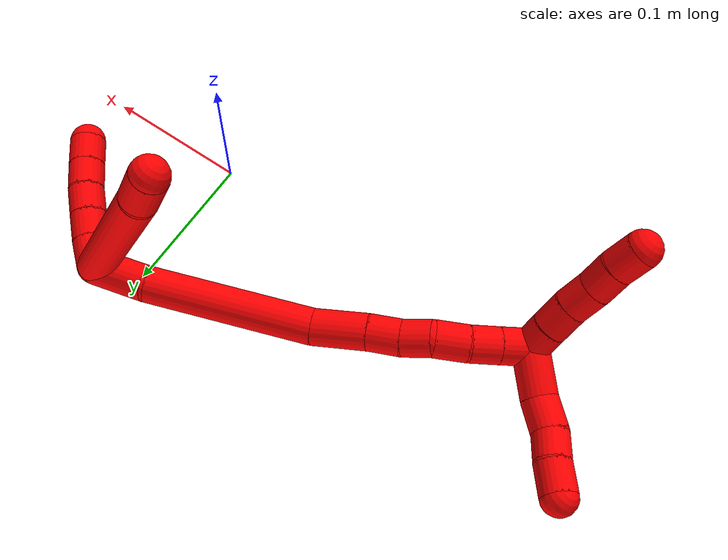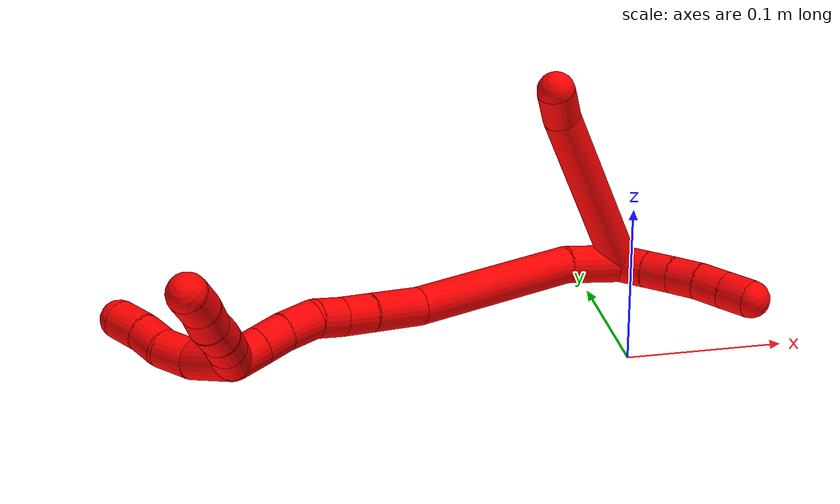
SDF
<sdf version="1.7">
 <world name="default">
  <model name="2">
   <static>0</static>
   <link name="2">
    <collision name="collision-cylinder-e_1_2_8">
     <pose>-0.009837 0.02602 0.056606 -0.430858 -0.156611 0.034337</pose>
     <geometry><cylinder><radius>0.0125</radius><length>0.126144</length></cylinder></geometry>
     <surface>
      <friction><ode><mu>1.16</mu><mu2>1.16</mu2><slip1>0</slip1><slip2>0</slip2></ode></friction>
      <contact><ode><kp>1e+06</kp><kd>1</kd><max_vel>0</max_vel><min_depth>0.001</min_depth></ode></contact>
     </surface>
    </collision>
    <visual name="visual-cylinder-e_1_2_8">
     <pose>-0.009837 0.02602 0.056606 -0.430858 -0.156611 0.034337</pose>
     <geometry><cylinder><radius>0.0125</radius><length>0.126144</length></cylinder></geometry>
     <material><ambient>1 0 0 1</ambient></material>
    </visual>
    <collision name="collision-cylinder-e_2_8_6">
     <pose>-0.019848 0.055347 0.124672 -0.281022 -0.014543 0.002057</pose>
     <geometry><cylinder><radius>0.0125</radius><length>0.023856</length></cylinder></geometry>
     <surface>
      <friction><ode><mu>1.16</mu><mu2>1.16</mu2><slip1>0</slip1><slip2>0</slip2></ode></friction>
      <contact><ode><kp>1e+06</kp><kd>1</kd><max_vel>0</max_vel><min_depth>0.001</min_depth></ode></contact>
     </surface>
    </collision>
    <visual name="visual-cylinder-e_2_8_6">
     <pose>-0.019848 0.055347 0.124672 -0.281022 -0.014543 0.002057</pose>
     <geometry><cylinder><radius>0.0125</radius><length>0.023856</length></cylinder></geometry>
     <material><ambient>1 0 0 1</ambient></material>
    </visual>
    <collision name="collision-cylinder-e_1_2_9">
     <pose>0.008411 -0.005132 0.001706 1.24997 0.999369 0.750371</pose>
     <geometry><cylinder><radius>0.0125</radius><length>0.02</length></cylinder></geometry>
     <surface>
      <friction><ode><mu>1.16</mu><mu2>1.16</mu2><slip1>0</slip1><slip2>0</slip2></ode></friction>
      <contact><ode><kp>1e+06</kp><kd>1</kd><max_vel>0</max_vel><min_depth>0.001</min_depth></ode></contact>
     </surface>
    </collision>
    <visual name="visual-cylinder-e_1_2_9">
     <pose>0.008411 -0.005132 0.001706 1.24997 0.999369 0.750371</pose>
     <geometry><cylinder><radius>0.0125</radius><length>0.02</length></cylinder></geometry>
     <material><ambient>1 0 0 1</ambient></material>
    </visual>
    <collision name="collision-cylinder-e_2_9_10">
     <pose>0.024857 -0.015643 0.005965 1.12737 0.933055 0.61637</pose>
     <geometry><cylinder><radius>0.0125</radius><length>0.02</length></cylinder></geometry>
     <surface>
      <friction><ode><mu>1.16</mu><mu2>1.16</mu2><slip1>0</slip1><slip2>0</slip2></ode></friction>
      <contact><ode><kp>1e+06</kp><kd>1</kd><max_vel>0</max_vel><min_depth>0.001</min_depth></ode></contact>
     </surface>
    </collision>
    <visual name="visual-cylinder-e_2_9_10">
     <pose>0.024857 -0.015643 0.005965 1.12737 0.933055 0.61637</pose>
     <geometry><cylinder><radius>0.0125</radius><length>0.02</length></cylinder></geometry>
     <material><ambient>1 0 0 1</ambient></material>
    </visual>
    <collision name="collision-cylinder-e_3_10_11">
     <pose>0.040855 -0.026544 0.010983 1.15133 0.921288 0.623147</pose>
     <geometry><cylinder><radius>0.0125</radius><length>0.02</length></cylinder></geometry>
     <surface>
      <friction><ode><mu>1.16</mu><mu2>1.16</mu2><slip1>0</slip1><slip2>0</slip2></ode></friction>
      <contact><ode><kp>1e+06</kp><kd>1</kd><max_vel>0</max_vel><min_depth>0.001</min_depth></ode></contact>
     </surface>
    </collision>
    <visual name="visual-cylinder-e_3_10_11">
     <pose>0.040855 -0.026544 0.010983 1.15133 0.921288 0.623147</pose>
     <geometry><cylinder><radius>0.0125</radius><length>0.02</length></cylinder></geometry>
     <material><ambient>1 0 0 1</ambient></material>
    </visual>
    <collision name="collision-cylinder-e_4_11_12">
     <pose>0.056141 -0.03841 0.015931 1.19734 0.821486 0.577593</pose>
     <geometry><cylinder><radius>0.0125</radius><length>0.02</length></cylinder></geometry>
     <surface>
      <friction><ode><mu>1.16</mu><mu2>1.16</mu2><slip1>0</slip1><slip2>0</slip2></ode></friction>
      <contact><ode><kp>1e+06</kp><kd>1</kd><max_vel>0</max_vel><min_depth>0.001</min_depth></ode></contact>
     </surface>
    </collision>
    <visual name="visual-cylinder-e_4_11_12">
     <pose>0.056141 -0.03841 0.015931 1.19734 0.821486 0.577593</pose>
     <geometry><cylinder><radius>0.0125</radius><length>0.02</length></cylinder></geometry>
     <material><ambient>1 0 0 1</ambient></material>
    </visual>
    <collision name="collision-cylinder-e_5_12_5">
     <pose>0.070667 -0.051093 0.021223 1.15408 0.804473 0.540324</pose>
     <geometry><cylinder><radius>0.0125</radius><length>0.02</length></cylinder></geometry>
     <surface>
      <friction><ode><mu>1.16</mu><mu2>1.16</mu2><slip1>0</slip1><slip2>0</slip2></ode></friction>
      <contact><ode><kp>1e+06</kp><kd>1</kd><max_vel>0</max_vel><min_depth>0.001</min_depth></ode></contact>
     </surface>
    </collision>
    <visual name="visual-cylinder-e_5_12_5">
     <pose>0.070667 -0.051093 0.021223 1.15408 0.804473 0.540324</pose>
     <geometry><cylinder><radius>0.0125</radius><length>0.02</length></cylinder></geometry>
     <material><ambient>1 0 0 1</ambient></material>
    </visual>
    <collision name="collision-cylinder-e_1_2_13">
     <pose>-0.01817 -0.00167 0.010114 0.163604 -1.05717 -0.095689</pose>
     <geometry><cylinder><radius>0.0125</radius><length>0.041724</length></cylinder></geometry>
     <surface>
      <friction><ode><mu>1.16</mu><mu2>1.16</mu2><slip1>0</slip1><slip2>0</slip2></ode></friction>
      <contact><ode><kp>1e+06</kp><kd>1</kd><max_vel>0</max_vel><min_depth>0.001</min_depth></ode></contact>
     </surface>
    </collision>
    <visual name="visual-cylinder-e_1_2_13">
     <pose>-0.01817 -0.00167 0.010114 0.163604 -1.05717 -0.095689</pose>
     <geometry><cylinder><radius>0.0125</radius><length>0.041724</length></cylinder></geometry>
     <material><ambient>1 0 0 1</ambient></material>
    </visual>
    <collision name="collision-cylinder-e_2_13_14">
     <pose>-0.085301 -0.020482 0.044188 0.621013 -1.02909 -0.358917</pose>
     <geometry><cylinder><radius>0.0125</radius><length>0.114282</length></cylinder></geometry>
     <surface>
      <friction><ode><mu>1.16</mu><mu2>1.16</mu2><slip1>0</slip1><slip2>0</slip2></ode></friction>
      <contact><ode><kp>1e+06</kp><kd>1</kd><max_vel>0</max_vel><min_depth>0.001</min_depth></ode></contact>
     </surface>
    </collision>
    <visual name="visual-cylinder-e_2_13_14">
     <pose>-0.085301 -0.020482 0.044188 0.621013 -1.02909 -0.358917</pose>
     <geometry><cylinder><radius>0.0125</radius><length>0.114282</length></cylinder></geometry>
     <material><ambient>1 0 0 1</ambient></material>
    </visual>
    <collision name="collision-cylinder-e_3_14_15">
     <pose>-0.148565 -0.042466 0.079372 0.407267 -0.863716 -0.189765</pose>
     <geometry><cylinder><radius>0.0125</radius><length>0.037631</length></cylinder></geometry>
     <surface>
      <friction><ode><mu>1.16</mu><mu2>1.16</mu2><slip1>0</slip1><slip2>0</slip2></ode></friction>
      <contact><ode><kp>1e+06</kp><kd>1</kd><max_vel>0</max_vel><min_depth>0.001</min_depth></ode></contact>
     </surface>
    </collision>
    <visual name="visual-cylinder-e_3_14_15">
     <pose>-0.148565 -0.042466 0.079372 0.407267 -0.863716 -0.189765</pose>
     <geometry><cylinder><radius>0.0125</radius><length>0.037631</length></cylinder></geometry>
     <material><ambient>1 0 0 1</ambient></material>
    </visual>
    <collision name="collision-cylinder-e_4_15_16">
     <pose>-0.171825 -0.049826 0.096632 0.395266 -0.939914 -0.202718</pose>
     <geometry><cylinder><radius>0.0125</radius><length>0.022181</length></cylinder></geometry>
     <surface>
      <friction><ode><mu>1.16</mu><mu2>1.16</mu2><slip1>0</slip1><slip2>0</slip2></ode></friction>
      <contact><ode><kp>1e+06</kp><kd>1</kd><max_vel>0</max_vel><min_depth>0.001</min_depth></ode></contact>
     </surface>
    </collision>
    <visual name="visual-cylinder-e_4_15_16">
     <pose>-0.171825 -0.049826 0.096632 0.395266 -0.939914 -0.202718</pose>
     <geometry><cylinder><radius>0.0125</radius><length>0.022181</length></cylinder></geometry>
     <material><ambient>1 0 0 1</ambient></material>
    </visual>
    <collision name="collision-cylinder-e_5_16_17">
     <pose>-0.187913 -0.054777 0.109536 0.340397 -0.774845 -0.140025</pose>
     <geometry><cylinder><radius>0.0125</radius><length>0.020389</length></cylinder></geometry>
     <surface>
      <friction><ode><mu>1.16</mu><mu2>1.16</mu2><slip1>0</slip1><slip2>0</slip2></ode></friction>
      <contact><ode><kp>1e+06</kp><kd>1</kd><max_vel>0</max_vel><min_depth>0.001</min_depth></ode></contact>
     </surface>
    </collision>
    <visual name="visual-cylinder-e_5_16_17">
     <pose>-0.187913 -0.054777 0.109536 0.340397 -0.774845 -0.140025</pose>
     <geometry><cylinder><radius>0.0125</radius><length>0.020389</length></cylinder></geometry>
     <material><ambient>1 0 0 1</ambient></material>
    </visual>
    <collision name="collision-cylinder-e_6_17_18">
     <pose>-0.204163 -0.062238 0.121283 0.800319 -0.91546 -0.410863</pose>
     <geometry><cylinder><radius>0.0125</radius><length>0.023001</length></cylinder></geometry>
     <surface>
      <friction><ode><mu>1.16</mu><mu2>1.16</mu2><slip1>0</slip1><slip2>0</slip2></ode></friction>
      <contact><ode><kp>1e+06</kp><kd>1</kd><max_vel>0</max_vel><min_depth>0.001</min_depth></ode></contact>
     </surface>
    </collision>
    <visual name="visual-cylinder-e_6_17_18">
     <pose>-0.204163 -0.062238 0.121283 0.800319 -0.91546 -0.410863</pose>
     <geometry><cylinder><radius>0.0125</radius><length>0.023001</length></cylinder></geometry>
     <material><ambient>1 0 0 1</ambient></material>
    </visual>
    <collision name="collision-cylinder-e_7_18_19">
     <pose>-0.220617 -0.072718 0.130439 0.905736 -0.814041 -0.413542</pose>
     <geometry><cylinder><radius>0.0125</radius><length>0.02018</length></cylinder></geometry>
     <surface>
      <friction><ode><mu>1.16</mu><mu2>1.16</mu2><slip1>0</slip1><slip2>0</slip2></ode></friction>
      <contact><ode><kp>1e+06</kp><kd>1</kd><max_vel>0</max_vel><min_depth>0.001</min_depth></ode></contact>
     </surface>
    </collision>
    <visual name="visual-cylinder-e_7_18_19">
     <pose>-0.220617 -0.072718 0.130439 0.905736 -0.814041 -0.413542</pose>
     <geometry><cylinder><radius>0.0125</radius><length>0.02018</length></cylinder></geometry>
     <material><ambient>1 0 0 1</ambient></material>
    </visual>
    <collision name="collision-cylinder-e_8_19_1">
     <pose>-0.23539 -0.083685 0.139241 0.883582 -0.806058 -0.397982</pose>
     <geometry><cylinder><radius>0.0125</radius><length>0.020614</length></cylinder></geometry>
     <surface>
      <friction><ode><mu>1.16</mu><mu2>1.16</mu2><slip1>0</slip1><slip2>0</slip2></ode></friction>
      <contact><ode><kp>1e+06</kp><kd>1</kd><max_vel>0</max_vel><min_depth>0.001</min_depth></ode></contact>
     </surface>
    </collision>
    <visual name="visual-cylinder-e_8_19_1">
     <pose>-0.23539 -0.083685 0.139241 0.883582 -0.806058 -0.397982</pose>
     <geometry><cylinder><radius>0.0125</radius><length>0.020614</length></cylinder></geometry>
     <material><ambient>1 0 0 1</ambient></material>
    </visual>
    <collision name="collision-cylinder-e_1_1_20">
     <pose>-0.24224 -0.089874 0.153728 0.067425 0.058689 0.00198</pose>
     <geometry><cylinder><radius>0.0125</radius><length>0.02</length></cylinder></geometry>
     <surface>
      <friction><ode><mu>1.16</mu><mu2>1.16</mu2><slip1>0</slip1><slip2>0</slip2></ode></friction>
      <contact><ode><kp>1e+06</kp><kd>1</kd><max_vel>0</max_vel><min_depth>0.001</min_depth></ode></contact>
     </surface>
    </collision>
    <visual name="visual-cylinder-e_1_1_20">
     <pose>-0.24224 -0.089874 0.153728 0.067425 0.058689 0.00198</pose>
     <geometry><cylinder><radius>0.0125</radius><length>0.02</length></cylinder></geometry>
     <material><ambient>1 0 0 1</ambient></material>
    </visual>
    <collision name="collision-cylinder-e_2_20_21">
     <pose>-0.241279 -0.091655 0.17362 0.111102 0.037503 0.002086</pose>
     <geometry><cylinder><radius>0.0125</radius><length>0.02</length></cylinder></geometry>
     <surface>
      <friction><ode><mu>1.16</mu><mu2>1.16</mu2><slip1>0</slip1><slip2>0</slip2></ode></friction>
      <contact><ode><kp>1e+06</kp><kd>1</kd><max_vel>0</max_vel><min_depth>0.001</min_depth></ode></contact>
     </surface>
    </collision>
    <visual name="visual-cylinder-e_2_20_21">
     <pose>-0.241279 -0.091655 0.17362 0.111102 0.037503 0.002086</pose>
     <geometry><cylinder><radius>0.0125</radius><length>0.02</length></cylinder></geometry>
     <material><ambient>1 0 0 1</ambient></material>
    </visual>
    <collision name="collision-cylinder-e_3_21_22">
     <pose>-0.241691 -0.093568 0.193487 0.080887 -0.078824 -0.003191</pose>
     <geometry><cylinder><radius>0.0125</radius><length>0.02</length></cylinder></geometry>
     <surface>
      <friction><ode><mu>1.16</mu><mu2>1.16</mu2><slip1>0</slip1><slip2>0</slip2></ode></friction>
      <contact><ode><kp>1e+06</kp><kd>1</kd><max_vel>0</max_vel><min_depth>0.001</min_depth></ode></contact>
     </surface>
    </collision>
    <visual name="visual-cylinder-e_3_21_22">
     <pose>-0.241691 -0.093568 0.193487 0.080887 -0.078824 -0.003191</pose>
     <geometry><cylinder><radius>0.0125</radius><length>0.02</length></cylinder></geometry>
     <material><ambient>1 0 0 1</ambient></material>
    </visual>
    <collision name="collision-cylinder-e_4_22_23">
     <pose>-0.242235 -0.094121 0.213418 -0.025283 0.024401 -0.000308</pose>
     <geometry><cylinder><radius>0.0125</radius><length>0.02</length></cylinder></geometry>
     <surface>
      <friction><ode><mu>1.16</mu><mu2>1.16</mu2><slip1>0</slip1><slip2>0</slip2></ode></friction>
      <contact><ode><kp>1e+06</kp><kd>1</kd><max_vel>0</max_vel><min_depth>0.001</min_depth></ode></contact>
     </surface>
    </collision>
    <visual name="visual-cylinder-e_4_22_23">
     <pose>-0.242235 -0.094121 0.213418 -0.025283 0.024401 -0.000308</pose>
     <geometry><cylinder><radius>0.0125</radius><length>0.02</length></cylinder></geometry>
     <material><ambient>1 0 0 1</ambient></material>
    </visual>
    <collision name="collision-cylinder-e_5_23_4">
     <pose>-0.243051 -0.093788 0.233355 -0.008043 -0.106259 0.000428</pose>
     <geometry><cylinder><radius>0.0125</radius><length>0.02</length></cylinder></geometry>
     <surface>
      <friction><ode><mu>1.16</mu><mu2>1.16</mu2><slip1>0</slip1><slip2>0</slip2></ode></friction>
      <contact><ode><kp>1e+06</kp><kd>1</kd><max_vel>0</max_vel><min_depth>0.001</min_depth></ode></contact>
     </surface>
    </collision>
    <visual name="visual-cylinder-e_5_23_4">
     <pose>-0.243051 -0.093788 0.233355 -0.008043 -0.106259 0.000428</pose>
     <geometry><cylinder><radius>0.0125</radius><length>0.02</length></cylinder></geometry>
     <material><ambient>1 0 0 1</ambient></material>
    </visual>
    <collision name="collision-cylinder-e_1_1_24">
     <pose>-0.256531 -0.082328 0.136682 -2.37142 -0.946534 1.80249</pose>
     <geometry><cylinder><radius>0.0125</radius><length>0.03378</length></cylinder></geometry>
     <surface>
      <friction><ode><mu>1.16</mu><mu2>1.16</mu2><slip1>0</slip1><slip2>0</slip2></ode></friction>
      <contact><ode><kp>1e+06</kp><kd>1</kd><max_vel>0</max_vel><min_depth>0.001</min_depth></ode></contact>
     </surface>
    </collision>
    <visual name="visual-cylinder-e_1_1_24">
     <pose>-0.256531 -0.082328 0.136682 -2.37142 -0.946534 1.80249</pose>
     <geometry><cylinder><radius>0.0125</radius><length>0.03378</length></cylinder></geometry>
     <material><ambient>1 0 0 1</ambient></material>
    </visual>
    <collision name="collision-cylinder-e_2_24_25">
     <pose>-0.279669 -0.068594 0.127794 -1.82766 -0.92609 1.14897</pose>
     <geometry><cylinder><radius>0.0125</radius><length>0.023606</length></cylinder></geometry>
     <surface>
      <friction><ode><mu>1.16</mu><mu2>1.16</mu2><slip1>0</slip1><slip2>0</slip2></ode></friction>
      <contact><ode><kp>1e+06</kp><kd>1</kd><max_vel>0</max_vel><min_depth>0.001</min_depth></ode></contact>
     </surface>
    </collision>
    <visual name="visual-cylinder-e_2_24_25">
     <pose>-0.279669 -0.068594 0.127794 -1.82766 -0.92609 1.14897</pose>
     <geometry><cylinder><radius>0.0125</radius><length>0.023606</length></cylinder></geometry>
     <material><ambient>1 0 0 1</ambient></material>
    </visual>
    <collision name="collision-cylinder-e_3_25_26">
     <pose>-0.295225 -0.054033 0.123991 -1.82498 -0.655847 0.828823</pose>
     <geometry><cylinder><radius>0.0125</radius><length>0.020077</length></cylinder></geometry>
     <surface>
      <friction><ode><mu>1.16</mu><mu2>1.16</mu2><slip1>0</slip1><slip2>0</slip2></ode></friction>
      <contact><ode><kp>1e+06</kp><kd>1</kd><max_vel>0</max_vel><min_depth>0.001</min_depth></ode></contact>
     </surface>
    </collision>
    <visual name="visual-cylinder-e_3_25_26">
     <pose>-0.295225 -0.054033 0.123991 -1.82498 -0.655847 0.828823</pose>
     <geometry><cylinder><radius>0.0125</radius><length>0.020077</length></cylinder></geometry>
     <material><ambient>1 0 0 1</ambient></material>
    </visual>
    <collision name="collision-cylinder-e_4_26_3">
     <pose>-0.309349 -0.03871 0.11979 -1.85187 -0.789693 1.01192</pose>
     <geometry><cylinder><radius>0.0125</radius><length>0.022536</length></cylinder></geometry>
     <surface>
      <friction><ode><mu>1.16</mu><mu2>1.16</mu2><slip1>0</slip1><slip2>0</slip2></ode></friction>
      <contact><ode><kp>1e+06</kp><kd>1</kd><max_vel>0</max_vel><min_depth>0.001</min_depth></ode></contact>
     </surface>
    </collision>
    <visual name="visual-cylinder-e_4_26_3">
     <pose>-0.309349 -0.03871 0.11979 -1.85187 -0.789693 1.01192</pose>
     <geometry><cylinder><radius>0.0125</radius><length>0.022536</length></cylinder></geometry>
     <material><ambient>1 0 0 1</ambient></material>
    </visual>
    <collision name="collision-sphere-3">
     <pose>-0.317351 -0.031088 0.11759 0 -0 0</pose>
     <geometry><sphere><radius>0.0125</radius></sphere></geometry>
     <surface>
      <friction><ode><mu>1.16</mu><mu2>1.16</mu2><slip1>0</slip1><slip2>0</slip2></ode></friction>
      <contact><ode><kp>1e+06</kp><kd>1</kd><max_vel>0</max_vel><min_depth>0.001</min_depth></ode></contact>
     </surface>
    </collision>
    <visual name="visual-sphere-3">
     <pose>-0.317351 -0.031088 0.11759 0 -0 0</pose>
     <geometry><sphere><radius>0.0125</radius></sphere></geometry>
     <material><ambient>1 0 0 1</ambient></material>
    </visual>
    <collision name="collision-sphere-26">
     <pose>-0.301347 -0.046333 0.121991 0 -0 0</pose>
     <geometry><sphere><radius>0.0125</radius></sphere></geometry>
     <surface>
      <friction><ode><mu>1.16</mu><mu2>1.16</mu2><slip1>0</slip1><slip2>0</slip2></ode></friction>
      <contact><ode><kp>1e+06</kp><kd>1</kd><max_vel>0</max_vel><min_depth>0.001</min_depth></ode></contact>
     </surface>
    </collision>
    <visual name="visual-sphere-26">
     <pose>-0.301347 -0.046333 0.121991 0 -0 0</pose>
     <geometry><sphere><radius>0.0125</radius></sphere></geometry>
     <material><ambient>1 0 0 1</ambient></material>
    </visual>
    <collision name="collision-sphere-25">
     <pose>-0.289103 -0.061733 0.125992 0 -0 0</pose>
     <geometry><sphere><radius>0.0125</radius></sphere></geometry>
     <surface>
      <friction><ode><mu>1.16</mu><mu2>1.16</mu2><slip1>0</slip1><slip2>0</slip2></ode></friction>
      <contact><ode><kp>1e+06</kp><kd>1</kd><max_vel>0</max_vel><min_depth>0.001</min_depth></ode></contact>
     </surface>
    </collision>
    <visual name="visual-sphere-25">
     <pose>-0.289103 -0.061733 0.125992 0 -0 0</pose>
     <geometry><sphere><radius>0.0125</radius></sphere></geometry>
     <material><ambient>1 0 0 1</ambient></material>
    </visual>
    <collision name="collision-sphere-24">
     <pose>-0.270235 -0.075454 0.129596 0 -0 0</pose>
     <geometry><sphere><radius>0.0125</radius></sphere></geometry>
     <surface>
      <friction><ode><mu>1.16</mu><mu2>1.16</mu2><slip1>0</slip1><slip2>0</slip2></ode></friction>
      <contact><ode><kp>1e+06</kp><kd>1</kd><max_vel>0</max_vel><min_depth>0.001</min_depth></ode></contact>
     </surface>
    </collision>
    <visual name="visual-sphere-24">
     <pose>-0.270235 -0.075454 0.129596 0 -0 0</pose>
     <geometry><sphere><radius>0.0125</radius></sphere></geometry>
     <material><ambient>1 0 0 1</ambient></material>
    </visual>
    <collision name="collision-sphere-4">
     <pose>-0.244112 -0.093708 0.243298 0 -0 0</pose>
     <geometry><sphere><radius>0.0125</radius></sphere></geometry>
     <surface>
      <friction><ode><mu>1.16</mu><mu2>1.16</mu2><slip1>0</slip1><slip2>0</slip2></ode></friction>
      <contact><ode><kp>1e+06</kp><kd>1</kd><max_vel>0</max_vel><min_depth>0.001</min_depth></ode></contact>
     </surface>
    </collision>
    <visual name="visual-sphere-4">
     <pose>-0.244112 -0.093708 0.243298 0 -0 0</pose>
     <geometry><sphere><radius>0.0125</radius></sphere></geometry>
     <material><ambient>1 0 0 1</ambient></material>
    </visual>
    <collision name="collision-sphere-23">
     <pose>-0.241991 -0.093868 0.223411 0 -0 0</pose>
     <geometry><sphere><radius>0.0125</radius></sphere></geometry>
     <surface>
      <friction><ode><mu>1.16</mu><mu2>1.16</mu2><slip1>0</slip1><slip2>0</slip2></ode></friction>
      <contact><ode><kp>1e+06</kp><kd>1</kd><max_vel>0</max_vel><min_depth>0.001</min_depth></ode></contact>
     </surface>
    </collision>
    <visual name="visual-sphere-23">
     <pose>-0.241991 -0.093868 0.223411 0 -0 0</pose>
     <geometry><sphere><radius>0.0125</radius></sphere></geometry>
     <material><ambient>1 0 0 1</ambient></material>
    </visual>
    <collision name="collision-sphere-22">
     <pose>-0.242479 -0.094374 0.203424 0 -0 0</pose>
     <geometry><sphere><radius>0.0125</radius></sphere></geometry>
     <surface>
      <friction><ode><mu>1.16</mu><mu2>1.16</mu2><slip1>0</slip1><slip2>0</slip2></ode></friction>
      <contact><ode><kp>1e+06</kp><kd>1</kd><max_vel>0</max_vel><min_depth>0.001</min_depth></ode></contact>
     </surface>
    </collision>
    <visual name="visual-sphere-22">
     <pose>-0.242479 -0.094374 0.203424 0 -0 0</pose>
     <geometry><sphere><radius>0.0125</radius></sphere></geometry>
     <material><ambient>1 0 0 1</ambient></material>
    </visual>
    <collision name="collision-sphere-21">
     <pose>-0.240904 -0.092763 0.183551 0 -0 0</pose>
     <geometry><sphere><radius>0.0125</radius></sphere></geometry>
     <surface>
      <friction><ode><mu>1.16</mu><mu2>1.16</mu2><slip1>0</slip1><slip2>0</slip2></ode></friction>
      <contact><ode><kp>1e+06</kp><kd>1</kd><max_vel>0</max_vel><min_depth>0.001</min_depth></ode></contact>
     </surface>
    </collision>
    <visual name="visual-sphere-21">
     <pose>-0.240904 -0.092763 0.183551 0 -0 0</pose>
     <geometry><sphere><radius>0.0125</radius></sphere></geometry>
     <material><ambient>1 0 0 1</ambient></material>
    </visual>
    <collision name="collision-sphere-20">
     <pose>-0.241654 -0.090547 0.163688 0 -0 0</pose>
     <geometry><sphere><radius>0.0125</radius></sphere></geometry>
     <surface>
      <friction><ode><mu>1.16</mu><mu2>1.16</mu2><slip1>0</slip1><slip2>0</slip2></ode></friction>
      <contact><ode><kp>1e+06</kp><kd>1</kd><max_vel>0</max_vel><min_depth>0.001</min_depth></ode></contact>
     </surface>
    </collision>
    <visual name="visual-sphere-20">
     <pose>-0.241654 -0.090547 0.163688 0 -0 0</pose>
     <geometry><sphere><radius>0.0125</radius></sphere></geometry>
     <material><ambient>1 0 0 1</ambient></material>
    </visual>
    <collision name="collision-sphere-11">
     <pose>0.048819 -0.032068 0.013446 0 -0 0</pose>
     <geometry><sphere><radius>0.0125</radius></sphere></geometry>
     <surface>
      <friction><ode><mu>1.16</mu><mu2>1.16</mu2><slip1>0</slip1><slip2>0</slip2></ode></friction>
      <contact><ode><kp>1e+06</kp><kd>1</kd><max_vel>0</max_vel><min_depth>0.001</min_depth></ode></contact>
     </surface>
    </collision>
    <visual name="visual-sphere-11">
     <pose>0.048819 -0.032068 0.013446 0 -0 0</pose>
     <geometry><sphere><radius>0.0125</radius></sphere></geometry>
     <material><ambient>1 0 0 1</ambient></material>
    </visual>
    <collision name="collision-sphere-10">
     <pose>0.032891 -0.021021 0.00852 0 -0 0</pose>
     <geometry><sphere><radius>0.0125</radius></sphere></geometry>
     <surface>
      <friction><ode><mu>1.16</mu><mu2>1.16</mu2><slip1>0</slip1><slip2>0</slip2></ode></friction>
      <contact><ode><kp>1e+06</kp><kd>1</kd><max_vel>0</max_vel><min_depth>0.001</min_depth></ode></contact>
     </surface>
    </collision>
    <visual name="visual-sphere-10">
     <pose>0.032891 -0.021021 0.00852 0 -0 0</pose>
     <geometry><sphere><radius>0.0125</radius></sphere></geometry>
     <material><ambient>1 0 0 1</ambient></material>
    </visual>
    <collision name="collision-sphere-6">
     <pose>-0.020022 0.058655 0.13613 0 -0 0</pose>
     <geometry><sphere><radius>0.0125</radius></sphere></geometry>
     <surface>
      <friction><ode><mu>1.16</mu><mu2>1.16</mu2><slip1>0</slip1><slip2>0</slip2></ode></friction>
      <contact><ode><kp>1e+06</kp><kd>1</kd><max_vel>0</max_vel><min_depth>0.001</min_depth></ode></contact>
     </surface>
    </collision>
    <visual name="visual-sphere-6">
     <pose>-0.020022 0.058655 0.13613 0 -0 0</pose>
     <geometry><sphere><radius>0.0125</radius></sphere></geometry>
     <material><ambient>1 0 0 1</ambient></material>
    </visual>
    <collision name="collision-sphere-9">
     <pose>0.016823 -0.010265 0.003411 0 -0 0</pose>
     <geometry><sphere><radius>0.0125</radius></sphere></geometry>
     <surface>
      <friction><ode><mu>1.16</mu><mu2>1.16</mu2><slip1>0</slip1><slip2>0</slip2></ode></friction>
      <contact><ode><kp>1e+06</kp><kd>1</kd><max_vel>0</max_vel><min_depth>0.001</min_depth></ode></contact>
     </surface>
    </collision>
    <visual name="visual-sphere-9">
     <pose>0.016823 -0.010265 0.003411 0 -0 0</pose>
     <geometry><sphere><radius>0.0125</radius></sphere></geometry>
     <material><ambient>1 0 0 1</ambient></material>
    </visual>
    <collision name="collision-sphere-2">
     <geometry><sphere><radius>0.0125</radius></sphere></geometry>
     <surface>
      <friction><ode><mu>1.16</mu><mu2>1.16</mu2><slip1>0</slip1><slip2>0</slip2></ode></friction>
      <contact><ode><kp>1e+06</kp><kd>1</kd><max_vel>0</max_vel><min_depth>0.001</min_depth></ode></contact>
     </surface>
    </collision>
    <visual name="visual-sphere-2">
     <geometry><sphere><radius>0.0125</radius></sphere></geometry>
     <material><ambient>1 0 0 1</ambient></material>
    </visual>
    <collision name="collision-sphere-19">
     <pose>-0.227953 -0.078169 0.134714 0 -0 0</pose>
     <geometry><sphere><radius>0.0125</radius></sphere></geometry>
     <surface>
      <friction><ode><mu>1.16</mu><mu2>1.16</mu2><slip1>0</slip1><slip2>0</slip2></ode></friction>
      <contact><ode><kp>1e+06</kp><kd>1</kd><max_vel>0</max_vel><min_depth>0.001</min_depth></ode></contact>
     </surface>
    </collision>
    <visual name="visual-sphere-19">
     <pose>-0.227953 -0.078169 0.134714 0 -0 0</pose>
     <geometry><sphere><radius>0.0125</radius></sphere></geometry>
     <material><ambient>1 0 0 1</ambient></material>
    </visual>
    <collision name="collision-sphere-8">
     <pose>-0.019675 0.052039 0.113213 0 -0 0</pose>
     <geometry><sphere><radius>0.0125</radius></sphere></geometry>
     <surface>
      <friction><ode><mu>1.16</mu><mu2>1.16</mu2><slip1>0</slip1><slip2>0</slip2></ode></friction>
      <contact><ode><kp>1e+06</kp><kd>1</kd><max_vel>0</max_vel><min_depth>0.001</min_depth></ode></contact>
     </surface>
    </collision>
    <visual name="visual-sphere-8">
     <pose>-0.019675 0.052039 0.113213 0 -0 0</pose>
     <geometry><sphere><radius>0.0125</radius></sphere></geometry>
     <material><ambient>1 0 0 1</ambient></material>
    </visual>
    <collision name="collision-sphere-12">
     <pose>0.063462 -0.044752 0.018416 0 -0 0</pose>
     <geometry><sphere><radius>0.0125</radius></sphere></geometry>
     <surface>
      <friction><ode><mu>1.16</mu><mu2>1.16</mu2><slip1>0</slip1><slip2>0</slip2></ode></friction>
      <contact><ode><kp>1e+06</kp><kd>1</kd><max_vel>0</max_vel><min_depth>0.001</min_depth></ode></contact>
     </surface>
    </collision>
    <visual name="visual-sphere-12">
     <pose>0.063462 -0.044752 0.018416 0 -0 0</pose>
     <geometry><sphere><radius>0.0125</radius></sphere></geometry>
     <material><ambient>1 0 0 1</ambient></material>
    </visual>
    <collision name="collision-sphere-5">
     <pose>0.077872 -0.057435 0.02403 0 -0 0</pose>
     <geometry><sphere><radius>0.0125</radius></sphere></geometry>
     <surface>
      <friction><ode><mu>1.16</mu><mu2>1.16</mu2><slip1>0</slip1><slip2>0</slip2></ode></friction>
      <contact><ode><kp>1e+06</kp><kd>1</kd><max_vel>0</max_vel><min_depth>0.001</min_depth></ode></contact>
     </surface>
    </collision>
    <visual name="visual-sphere-5">
     <pose>0.077872 -0.057435 0.02403 0 -0 0</pose>
     <geometry><sphere><radius>0.0125</radius></sphere></geometry>
     <material><ambient>1 0 0 1</ambient></material>
    </visual>
    <collision name="collision-sphere-13">
     <pose>-0.036341 -0.003339 0.020227 0 -0 0</pose>
     <geometry><sphere><radius>0.0125</radius></sphere></geometry>
     <surface>
      <friction><ode><mu>1.16</mu><mu2>1.16</mu2><slip1>0</slip1><slip2>0</slip2></ode></friction>
      <contact><ode><kp>1e+06</kp><kd>1</kd><max_vel>0</max_vel><min_depth>0.001</min_depth></ode></contact>
     </surface>
    </collision>
    <visual name="visual-sphere-13">
     <pose>-0.036341 -0.003339 0.020227 0 -0 0</pose>
     <geometry><sphere><radius>0.0125</radius></sphere></geometry>
     <material><ambient>1 0 0 1</ambient></material>
    </visual>
    <collision name="collision-sphere-14">
     <pose>-0.134261 -0.037624 0.068149 0 -0 0</pose>
     <geometry><sphere><radius>0.0125</radius></sphere></geometry>
     <surface>
      <friction><ode><mu>1.16</mu><mu2>1.16</mu2><slip1>0</slip1><slip2>0</slip2></ode></friction>
      <contact><ode><kp>1e+06</kp><kd>1</kd><max_vel>0</max_vel><min_depth>0.001</min_depth></ode></contact>
     </surface>
    </collision>
    <visual name="visual-sphere-14">
     <pose>-0.134261 -0.037624 0.068149 0 -0 0</pose>
     <geometry><sphere><radius>0.0125</radius></sphere></geometry>
     <material><ambient>1 0 0 1</ambient></material>
    </visual>
    <collision name="collision-sphere-15">
     <pose>-0.16287 -0.047307 0.090595 0 -0 0</pose>
     <geometry><sphere><radius>0.0125</radius></sphere></geometry>
     <surface>
      <friction><ode><mu>1.16</mu><mu2>1.16</mu2><slip1>0</slip1><slip2>0</slip2></ode></friction>
      <contact><ode><kp>1e+06</kp><kd>1</kd><max_vel>0</max_vel><min_depth>0.001</min_depth></ode></contact>
     </surface>
    </collision>
    <visual name="visual-sphere-15">
     <pose>-0.16287 -0.047307 0.090595 0 -0 0</pose>
     <geometry><sphere><radius>0.0125</radius></sphere></geometry>
     <material><ambient>1 0 0 1</ambient></material>
    </visual>
    <collision name="collision-sphere-16">
     <pose>-0.180781 -0.052345 0.102669 0 -0 0</pose>
     <geometry><sphere><radius>0.0125</radius></sphere></geometry>
     <surface>
      <friction><ode><mu>1.16</mu><mu2>1.16</mu2><slip1>0</slip1><slip2>0</slip2></ode></friction>
      <contact><ode><kp>1e+06</kp><kd>1</kd><max_vel>0</max_vel><min_depth>0.001</min_depth></ode></contact>
     </surface>
    </collision>
    <visual name="visual-sphere-16">
     <pose>-0.180781 -0.052345 0.102669 0 -0 0</pose>
     <geometry><sphere><radius>0.0125</radius></sphere></geometry>
     <material><ambient>1 0 0 1</ambient></material>
    </visual>
    <collision name="collision-sphere-17">
     <pose>-0.195044 -0.057209 0.116402 0 -0 0</pose>
     <geometry><sphere><radius>0.0125</radius></sphere></geometry>
     <surface>
      <friction><ode><mu>1.16</mu><mu2>1.16</mu2><slip1>0</slip1><slip2>0</slip2></ode></friction>
      <contact><ode><kp>1e+06</kp><kd>1</kd><max_vel>0</max_vel><min_depth>0.001</min_depth></ode></contact>
     </surface>
    </collision>
    <visual name="visual-sphere-17">
     <pose>-0.195044 -0.057209 0.116402 0 -0 0</pose>
     <geometry><sphere><radius>0.0125</radius></sphere></geometry>
     <material><ambient>1 0 0 1</ambient></material>
    </visual>
    <collision name="collision-sphere-18">
     <pose>-0.213281 -0.067267 0.126164 0 -0 0</pose>
     <geometry><sphere><radius>0.0125</radius></sphere></geometry>
     <surface>
      <friction><ode><mu>1.16</mu><mu2>1.16</mu2><slip1>0</slip1><slip2>0</slip2></ode></friction>
      <contact><ode><kp>1e+06</kp><kd>1</kd><max_vel>0</max_vel><min_depth>0.001</min_depth></ode></contact>
     </surface>
    </collision>
    <visual name="visual-sphere-18">
     <pose>-0.213281 -0.067267 0.126164 0 -0 0</pose>
     <geometry><sphere><radius>0.0125</radius></sphere></geometry>
     <material><ambient>1 0 0 1</ambient></material>
    </visual>
    <collision name="collision-sphere-1">
     <pose>-0.242827 -0.089202 0.143768 0 -0 0</pose>
     <geometry><sphere><radius>0.0125</radius></sphere></geometry>
     <surface>
      <friction><ode><mu>1.16</mu><mu2>1.16</mu2><slip1>0</slip1><slip2>0</slip2></ode></friction>
      <contact><ode><kp>1e+06</kp><kd>1</kd><max_vel>0</max_vel><min_depth>0.001</min_depth></ode></contact>
     </surface>
    </collision>
    <visual name="visual-sphere-1">
     <pose>-0.242827 -0.089202 0.143768 0 -0 0</pose>
     <geometry><sphere><radius>0.0125</radius></sphere></geometry>
     <material><ambient>1 0 0 1</ambient></material>
    </visual>
    <inertial>
     <pose>-0.117083 -0.032808 0.086044 0 -0 0</pose>
     <mass>0.75</mass>
     <inertia>
      <ixx>0.000227</ixx>
      <ixy>0</ixy>
      <ixz>0</ixz>
      <iyy>0.000303</iyy>
      <iyz>0</iyz>
      <izz>0.000158</izz>
     </inertia>
    </inertial>
   </link>
   <pose>0.026696 0.115242 0.01128 0.648212 -0.205748 -0.168268</pose>
  </model>
 </world>
</sdf>
